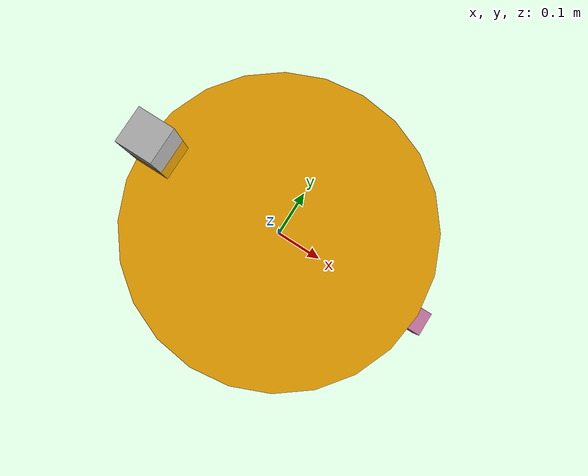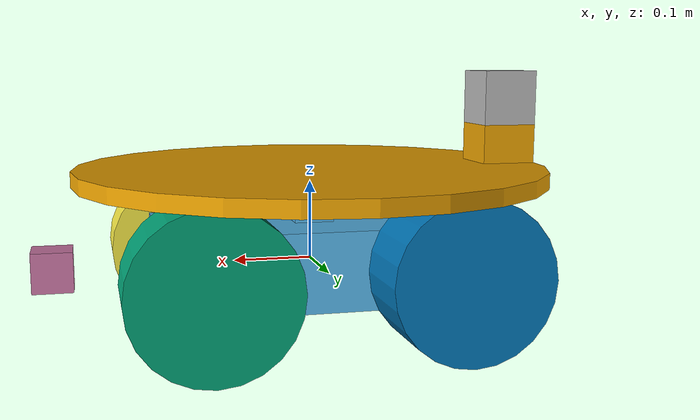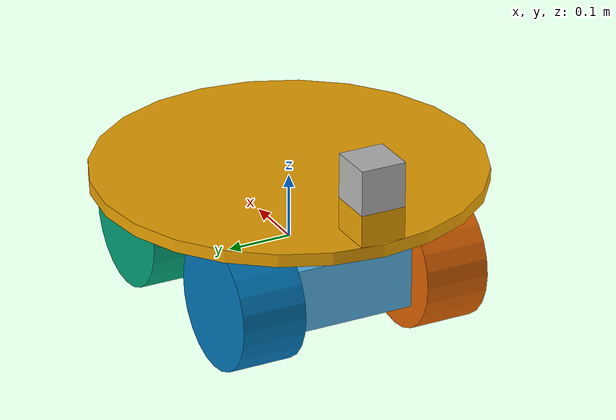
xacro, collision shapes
<?xml version='1.0'?>

<robot name="my_robot" xmlns:xacro="http://www.ros.org/wiki/xacro">

	<xacro:include filename="$(find my_robot)/urdf/my_robot.gazebo"/>

  <link name="robot_footprint"/>

  <joint name="robot_footprint_joint" type="fixed">
    <origin xyz="0 0 0" rpy="0 0 0" />
    <parent link="robot_footprint"/>
    <child link="chassis" />
  </joint>
  <link name='chassis'>
    <pose>0 0 0.1 0 0 0</pose>
    <inertial>
      <mass value="35.0"/>
      <origin xyz="0.0 0 0" rpy=" 0 0 0"/>
      <inertia
          ixx="0.1" ixy="0" ixz="0"
          iyy="0.1" iyz="0"
          izz="0.1"
      />
    </inertial>
    <collision name='chassis_collision'>
      <origin xyz="0 0 0" rpy=" 0 0 0"/>
      <geometry>
        <box size=".4 .2 .1"/>
      </geometry>
    </collision>
    <visual name='chassis_visual'>
      <origin xyz="0 0 0" rpy=" 0 0 0"/>
      <geometry>
        <box size=".6 .2 .1"/>
      </geometry>
    </visual>
    <collision name='chassis_top_collision'>
      <origin xyz="0 0 0.075" rpy=" 0 0 0"/>
      <geometry>
        <box size=".05 .05 .05"/>
      </geometry>
    </collision>
    <visual name='chassis_top_visual'>
      <origin xyz="0 0 0.075" rpy=" 0 0 0"/>
      <geometry>
        <box size=".05 .05 .05"/>
      </geometry>
    </visual>
  </link>

  <joint type="continuous" name="left_front_wheel_hinge">
    <origin xyz="0.15 0.15 0" rpy="0 0 0"/>
    <child link="left_front_wheel"/>
    <parent link="chassis"/>
    <axis xyz="0 1 0" rpy="0 0 0"/>
    <limit effort="10000" velocity="1000"/>
    <dynamics damping="1.0" friction="1.0"/>
  </joint>
	<link name='left_front_wheel'>
    <collision name='left_front_wheel_collision'>
      <origin xyz="0 0 0" rpy=" 0 1.5707 1.5707"/>
      <geometry>
        <cylinder radius="0.1" length="0.1"/>
      </geometry>
    </collision>
    <visual name='left_front_wheel_visual'>
      <origin xyz="0 -0.02 0" rpy=" 0 1.5707 0"/>
      <geometry>
				<mesh filename="package://my_robot/meshes/mecanum0.stl" scale="1 1 1"/>
      </geometry>
    </visual>
    <inertial>
      <mass value="10.0"/>
      <origin xyz="0.0 0 0" rpy=" 0 0 0"/>
      <inertia
          ixx="0.1" ixy="0" ixz="0"
          iyy="0.1" iyz="0"
          izz="0.1"
      />
    </inertial>
	</link>

  <joint type="continuous" name="right_front_wheel_hinge">
    <origin xyz="0.15 -0.15 0" rpy="0 0 0"/>
    <child link="right_front_wheel"/>
    <parent link="chassis"/>
    <axis xyz="0 1 0" rpy="0 0 0"/>
    <limit effort="10000" velocity="1000"/>
    <dynamics damping="1.0" friction="1.0"/>
  </joint>
	<link name='right_front_wheel'>
    <collision name='right_front_wheel_collision'>
      <origin xyz="0 0 0" rpy=" 0 1.5707 1.5707"/>
      <geometry>
        <cylinder radius="0.1" length="0.1"/>
      </geometry>
    </collision>
    <visual name='right_front_wheel_visual'>
      <origin xyz="0 -0.02 0" rpy=" 0 -1.5707 0"/>
      <geometry>
				<mesh filename="package://my_robot/meshes/mecanum0.stl" scale="1 1 1"/>
      </geometry>
    </visual>
    <inertial>
      <mass value="10.0"/>
      <origin xyz="0.0 0 0" rpy=" 0 0 0"/>
      <inertia
          ixx="0.1" ixy="0" ixz="0"
          iyy="0.1" iyz="0"
          izz="0.1"
      />
    </inertial>
	</link>

  <joint type="continuous" name="left_back_wheel_hinge">
    <origin xyz="-0.15 0.15 0" rpy="0 0 0"/>
    <child link="left_back_wheel"/>
    <parent link="chassis"/>
    <axis xyz="0 1 0" rpy="0 0 0"/>
    <limit effort="10000" velocity="1000"/>
    <dynamics damping="1.0" friction="1.0"/>
  </joint>
	<link name='left_back_wheel'>
    <collision name='left_back_wheel_collision'>
      <origin xyz="0 0 0" rpy=" 0 1.5707 1.5707"/>
      <geometry>
        <cylinder radius="0.1" length="0.1"/>
      </geometry>
    </collision>
    <visual name='left_back_wheel_visual'>
      <origin xyz="0 -0.02 0" rpy=" 0 1.5707 0"/>
      <geometry>
				<mesh filename="package://my_robot/meshes/mecanum0.stl" scale="1 1 1"/>
      </geometry>
    </visual>
    <inertial>
      <mass value="10.0"/>
      <origin xyz="0.0 0 0" rpy=" 0 0 0"/>
      <inertia
          ixx="0.1" ixy="0" ixz="0"
          iyy="0.1" iyz="0"
          izz="0.1"
      />
    </inertial>
	</link>

  <joint type="continuous" name="right_back_wheel_hinge">
    <origin xyz="-0.15 -0.15 0" rpy="0 0 0"/>
    <child link="right_back_wheel"/>
    <parent link="chassis"/>
    <axis xyz="0 1 0" rpy="0 0 0"/>
    <limit effort="10000" velocity="1000"/>
    <dynamics damping="1.0" friction="1.0"/>
  </joint>
	<link name='right_back_wheel'>
    <collision name='right_back_wheel_collision'>
      <origin xyz="0 0 0" rpy=" 0 1.5707 1.5707"/>
      <geometry>
        <cylinder radius="0.1" length="0.1"/>
      </geometry>
    </collision>
    <visual name='right_back_wheel_visual'>
      <origin xyz="0 -0.02 0" rpy=" 0 -1.5707 0"/>
      <geometry>
				<mesh filename="package://my_robot/meshes/mecanum0.stl" scale="1 1 1"/>
      </geometry>
    </visual>
    <inertial>
      <mass value="5.0"/>
      <origin xyz="0.0 0 0" rpy=" 0 0 0"/>
      <inertia
          ixx="0.1" ixy="0" ixz="0"
          iyy="0.1" iyz="0"
          izz="0.1"
      />
    </inertial>
	</link>

	<!-- sensors -->
  <joint type="fixed" name="camera_joint">
    <origin xyz="0.325 0 0" rpy="0 0 0"/>
    <child link="camera"/>
    <parent link="chassis"/>
    <axis xyz="0 1 0" rpy="0 0 0"/>
  </joint>
	<link name='camera'>
    <collision name='camera_collision'>
      <origin xyz="0 0 0" rpy=" 0 0 0"/>
      <geometry>
        <box size="0.05 0.05 0.05"/>
      </geometry>
    </collision>
    <visual name='camera_visual'>
      <origin xyz="0 0 0" rpy=" 0 0 0"/>
      <geometry>
        <box size="0.05 0.05 0.05"/>
      </geometry>
    </visual>
    <inertial>
      <mass value="0.1"/>
      <origin xyz="0.0 0 0" rpy=" 0 0 0"/>
      <inertia
          ixx="1e-6" ixy="0" ixz="0"
          iyy="0.000001" iyz="0"
          izz="0.000001"
      />
    </inertial>
	</link>

  <joint type="fixed" name="hokuyo_joint">
    <origin xyz="-0.26 0 0.205" rpy="0 0 0"/>
    <child link="hokuyo"/>
    <parent link="chassis"/>
    <axis xyz="0 1 0" rpy="0 0 0"/>
  </joint>
	<link name='hokuyo'>
    <collision name='hokuyo_collision'>
      <origin xyz="0 0 0" rpy=" 0 0 0"/>
      <geometry>
        <box size="0.07 0.07 0.07"/>
      </geometry>
    </collision>
    <visual name='hokuyo_visual'>
      <origin xyz="0 0 0" rpy=" 0 0 0"/>
      <geometry>
				<mesh filename="package://my_robot/meshes/hokuyo.dae" />
      </geometry>
    </visual>
    <inertial>
      <mass value="1e-5"/>
      <origin xyz="0.0 0 0" rpy=" 0 0 0"/>
      <inertia
          ixx="1e-6" ixy="0" ixz="0"
          iyy="0.000001" iyz="0"
          izz="0.000001"
      />
    </inertial>
	</link>

	<!-- plate -->
  <joint type="fixed" name="plate_hinge">
    <origin xyz="0 0 0.11" rpy="0 0 0"/>
    <child link="plate"/>
    <parent link="chassis"/>
    <axis xyz="0 1 0" rpy="0 0 0"/>
  </joint>
	<link name='plate'>
    <collision name='plate_collision'>
      <origin xyz="0 0 0" rpy=" 0 0 0"/>
      <geometry>
        <cylinder radius="0.3" length="0.02"/>
      </geometry>
    </collision>
    <visual name='plate_visual'>
      <origin xyz="0 0 0" rpy=" 0 0 0"/>
      <geometry>
        <cylinder radius="0.3" length="0.02"/>
      </geometry>
    </visual>
    <inertial>
      <mass value="30.0"/>
      <origin xyz="0.0 0 0" rpy=" 0 0 0"/>
      <inertia
          ixx="0.1" ixy="0" ixz="0"
          iyy="0.1" iyz="0"
          izz="0.1"
      />
    </inertial>
    <collision name='plate_top_collision'>
      <origin xyz="-0.26 0 0.035" rpy=" 0 0 0"/>
      <geometry>
        <box size=".07 .07 .05"/>
      </geometry>
    </collision>
    <visual name='plate_top_visual'>
      <origin xyz="-0.26 0 0.035" rpy=" 0 0 0"/>
      <geometry>
        <box size=".07 .07 .05"/>
      </geometry>
    </visual>
	</link>
</robot>
